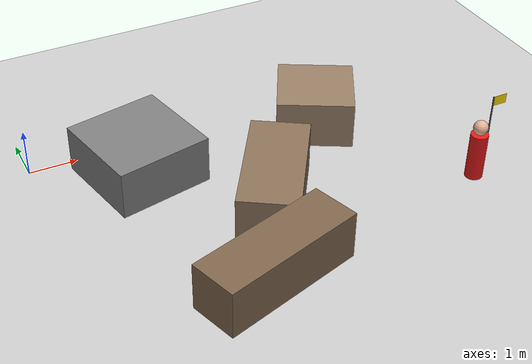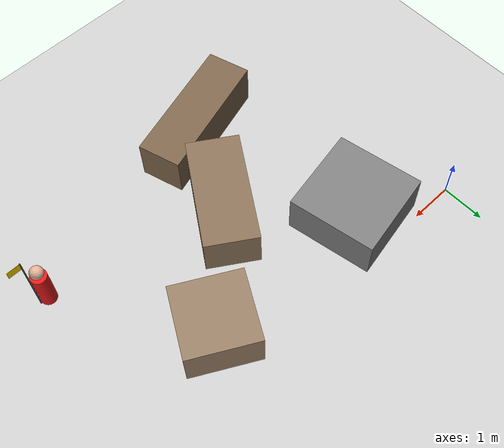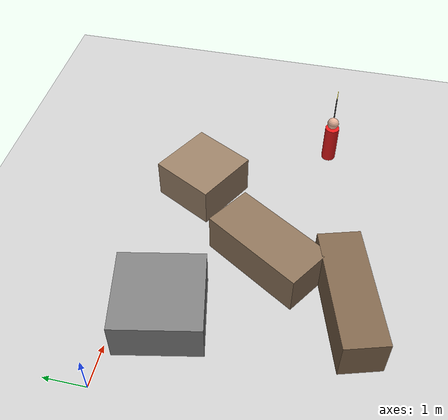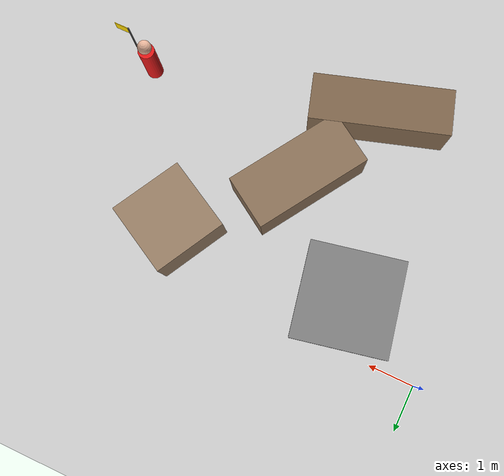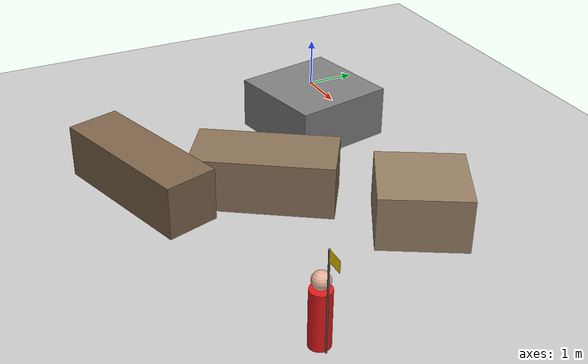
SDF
<?xml version="1.0"?>
<!--
  Scenario C — far-field SE victim, clustered obstacles.
  Geometry must mirror sar_crew/sar_crew/scenarios.py SCENARIOS['c'] exactly.
-->
<sdf version="1.6">
  <world name="default">

    <plugin name="gazebo_ros_state" filename="libgazebo_ros_state.so"/>

    <include>
      <uri>model://ground_plane</uri>
    </include>

    <include>
      <uri>model://sun</uri>
    </include>

    <scene>
      <shadows>false</shadows>
    </scene>

    <gui fullscreen='0'>
      <camera name='user_camera'>
        <pose frame=''>-8 -8 6 0 0.4 0.78</pose>
        <view_controller>orbit</view_controller>
        <projection_type>perspective</projection_type>
      </camera>
    </gui>

    <physics type="ode">
      <real_time_update_rate>250</real_time_update_rate>
      <max_step_size>0.004</max_step_size>
      <real_time_factor>1</real_time_factor>
      <ode>
        <solver>
          <type>quick</type>
          <iters>10</iters>
          <sor>1.3</sor>
        </solver>
        <constraints>
          <cfm>0</cfm>
          <erp>0.2</erp>
          <contact_max_correcting_vel>100</contact_max_correcting_vel>
          <contact_surface_layer>0.001</contact_surface_layer>
        </constraints>
      </ode>
    </physics>

    <!-- Dense obstacle cluster between rover spawn and the SE victim -->
    <model name="rubble_1">
      <static>true</static>
      <pose>2 -1 0.5 0 0 0.2</pose>
      <link name="link">
        <visual name="visual">
          <geometry><box><size>2.0 2.0 1</size></box></geometry>
          <material><ambient>0.5 0.5 0.5 1</ambient><diffuse>0.5 0.5 0.5 1</diffuse></material>
        </visual>
        <collision name="collision">
          <geometry><box><size>2.0 2.0 1</size></box></geometry>
        </collision>
      </link>
    </model>

    <model name="rubble_2">
      <static>true</static>
      <pose>4 -3 0.5 0 0 1.0</pose>
      <link name="link">
        <visual name="visual">
          <geometry><box><size>2.6 1.2 1</size></box></geometry>
          <material><ambient>0.55 0.45 0.35 1</ambient><diffuse>0.55 0.45 0.35 1</diffuse></material>
        </visual>
        <collision name="collision">
          <geometry><box><size>2.6 1.2 1</size></box></geometry>
        </collision>
      </link>
    </model>

    <model name="rubble_3">
      <static>true</static>
      <pose>6 -1 0.5 0 0 -0.5</pose>
      <link name="link">
        <visual name="visual">
          <geometry><box><size>1.6 1.6 1</size></box></geometry>
          <material><ambient>0.6 0.5 0.4 1</ambient><diffuse>0.6 0.5 0.4 1</diffuse></material>
        </visual>
        <collision name="collision">
          <geometry><box><size>1.6 1.6 1</size></box></geometry>
        </collision>
      </link>
    </model>

    <model name="rubble_4">
      <static>true</static>
      <pose>3 -5 0.5 0 0 0.3</pose>
      <link name="link">
        <visual name="visual">
          <geometry><box><size>3.0 1.0 1</size></box></geometry>
          <material><ambient>0.5 0.4 0.3 1</ambient><diffuse>0.5 0.4 0.3 1</diffuse></material>
        </visual>
        <collision name="collision">
          <geometry><box><size>3.0 1.0 1</size></box></geometry>
        </collision>
      </link>
    </model>

    <!-- The person to be located by the drone and reached by the rover -->
    <include>
      <name>victim</name>
      <pose>8 -4 0 0 0 0</pose>
      <uri>model://victim</uri>
    </include>

  </world>
</sdf>

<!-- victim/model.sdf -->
<sdf version="1.6">
  <model name="victim">
    <static>true</static>
    <link name="link">
      <pose>0 0 0 0 0 0</pose>

      <!-- body -->
      <visual name="body_visual">
        <pose>0 0 0.5 0 0 0</pose>
        <geometry>
          <cylinder>
            <radius>0.18</radius>
            <length>1.0</length>
          </cylinder>
        </geometry>
        <material>
          <ambient>0.9 0.1 0.1 1</ambient>
          <diffuse>0.9 0.1 0.1 1</diffuse>
        </material>
      </visual>
      <collision name="body_collision">
        <pose>0 0 0.5 0 0 0</pose>
        <geometry>
          <cylinder>
            <radius>0.18</radius>
            <length>1.0</length>
          </cylinder>
        </geometry>
      </collision>

      <!-- head -->
      <visual name="head_visual">
        <pose>0 0 1.15 0 0 0</pose>
        <geometry>
          <sphere>
            <radius>0.15</radius>
          </sphere>
        </geometry>
        <material>
          <ambient>0.9 0.7 0.6 1</ambient>
          <diffuse>0.9 0.7 0.6 1</diffuse>
        </material>
      </visual>
      <collision name="head_collision">
        <pose>0 0 1.15 0 0 0</pose>
        <geometry>
          <sphere>
            <radius>0.15</radius>
          </sphere>
        </geometry>
      </collision>

      <!-- bright marker flag so it's visible from the air -->
      <visual name="flag_pole">
        <pose>0.2 0 0.9 0 0 0</pose>
        <geometry>
          <cylinder>
            <radius>0.015</radius>
            <length>1.8</length>
          </cylinder>
        </geometry>
        <material>
          <ambient>0.3 0.3 0.3 1</ambient>
          <diffuse>0.3 0.3 0.3 1</diffuse>
        </material>
      </visual>
      <visual name="flag">
        <pose>0.35 0 1.7 0 0 0</pose>
        <geometry>
          <box>
            <size>0.3 0.01 0.2</size>
          </box>
        </geometry>
        <material>
          <ambient>1 0.85 0 1</ambient>
          <diffuse>1 0.85 0 1</diffuse>
          <emissive>0.5 0.4 0 1</emissive>
        </material>
      </visual>
    </link>
  </model>
</sdf>
